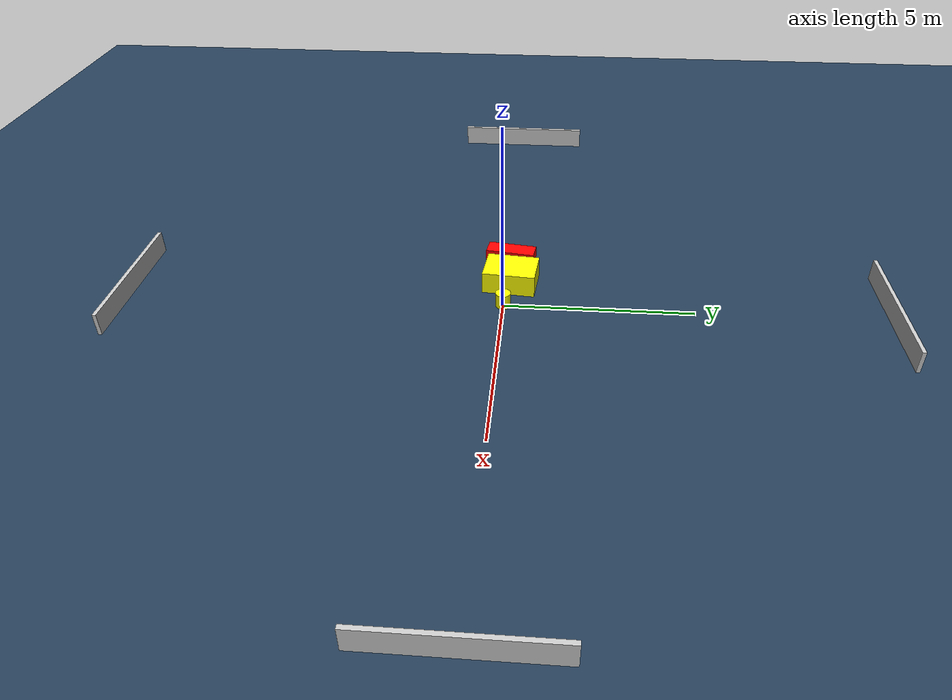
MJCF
<?xml version="1.0" ?>
<mujoco model="generated_environment">
  <option timestep="0.01" integrator="RK4" cone="elliptic"/>
  <default>
    <geom density="1"/>
  </default>
  <asset>
    <texture builtin="gradient" height="3072" name="skybox" rgb1="0.3 0.5 0.7" rgb2="0 0 0" type="skybox" width="512"/>
    <texture builtin="checker" height="300" name="groundplane" rgb1="0.2 0.3 0.4" rgb2="0.1 0.2 0.3" type="2d" width="300"/>
    <material name="groundplane" reflectance="0.2" texrepeat="5 5" texture="groundplane"/>
  </asset>
  <worldbody>
    <light dir="0 0 -1" directional="true" pos="0 0 1.5"/>
    <geom condim="3" friction="0.5 0.005 0.001" material="groundplane" name="floor" pos="0 0 0" size="0 0 0.05" type="plane"/>
    <body name="walls">
      <geom name="wall_1" condim="4" pos="-10.0 0.0 0.3" rgba="0.800000011920929 0.800000011920929 0.800000011920929 1.0" size="0.05 2.0 0.3" type="box"/>
      <geom name="wall_2" condim="4" pos="10.0 0.0 0.3" rgba="0.800000011920929 0.800000011920929 0.800000011920929 1.0" size="0.05 2.0 0.3" type="box"/>
      <geom name="wall_3" condim="4" pos="0.0 -10.0 0.3" rgba="0.800000011920929 0.800000011920929 0.800000011920929 1.0" size="2.0 0.05 0.3" type="box"/>
      <geom name="wall_4" condim="4" pos="0.0 10.0 0.3" rgba="0.800000011920929 0.800000011920929 0.800000011920929 1.0" size="2.0 0.05 0.3" type="box"/>
    </body>
    <body name="robot">
      <joint name="joint_x" type="slide" pos="0 0 0" axis="1 0 0"/>
      <joint name="joint_y" type="slide" pos="0 0 0" axis="0 1 0"/>
      <geom name="robot" type="cylinder" pos="0.0 0.0 0.2" size="0.2 0.2 0.0" mass="5.0" friction="1.0 0.005 0.0001" condim="4" rgba="1.0 1.0 0.0 1.0"/>
    </body>
    <body name="obstacle_1_movable">
      <geom name="obstacle_1_movable" condim="4" pos="-1.0090000561650487 0.14283218416463836 0.3" euler="0 0 84.88073220913263" friction="0.0 0.005 0.001" rgba="1.0 1.0 0.0 1.0" size="0.7020295252472115 0.5116798652631707 0.3" type="box" mass="0.1"/>
      <joint type="free"/>
    </body>
    <body name="obstacle_2_static">
      <geom name="obstacle_2_static" condim="4" pos="-1.876923826869773 0.094611921494713 0.3" euler="0 0 352.0733324932564" friction="0.0 0.005 0.001" rgba="1.0 0.0 0.0 1.0" size="0.23655507634503325 0.6608355983390828 0.3" type="box"/>
    </body>
  </worldbody>
  <actuator>
    <motor name="actuator_x" joint="joint_x" gear="1" ctrlrange="-1 1"/>
    <motor name="actuator_y" joint="joint_y" gear="1" ctrlrange="-1 1"/>
  </actuator>
</mujoco>
